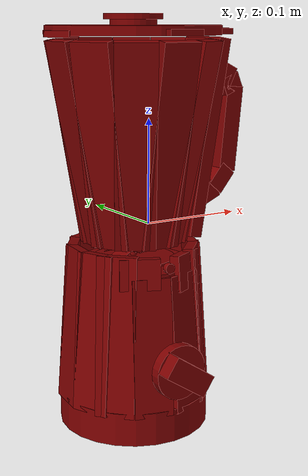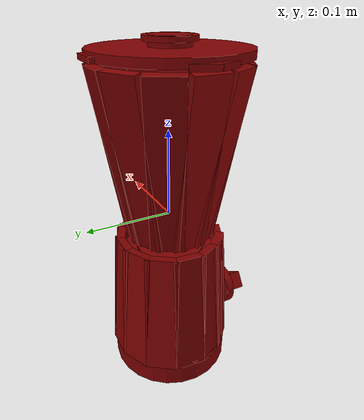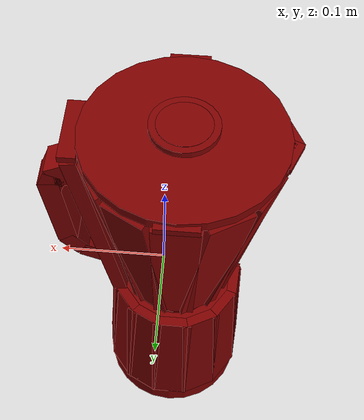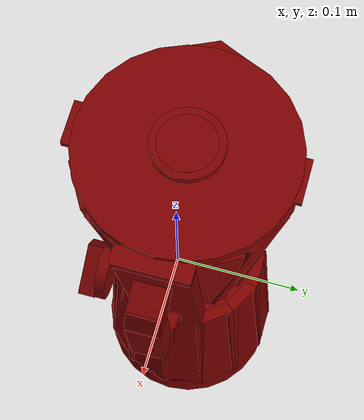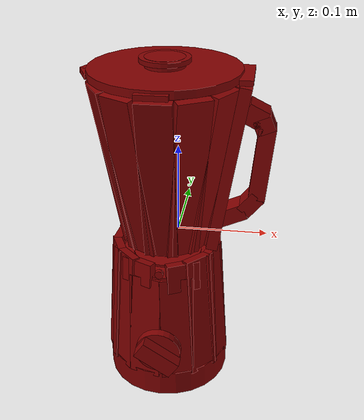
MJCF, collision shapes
<?xml version='1.0' encoding='UTF-8'?>
<mujoco model="model">
  <option timestep="0.002" gravity="0.0 0.0 -9.81"/>
  <compiler angle="radian"/>
  <asset>
    <mesh file="visuals/Blade001.obj" name="Blade001_vis"/>
    <mesh file="visuals/Body001.obj" name="Body001_vis"/>
    <mesh file="visuals/Button001.obj" name="Button001_vis"/>
    <mesh file="visuals/Handle001.obj" name="Handle001_vis"/>
    <mesh file="visuals/Jug001.obj" name="Jug001_vis"/>
    <mesh file="visuals/Jug001_Clear.obj" name="Jug001_Clear_vis"/>
    <mesh file="visuals/Knob001.obj" name="Knob001_vis"/>
    <mesh file="visuals/Lid001.obj" name="Lid001_vis"/>
    <texture file="visuals/T_BC001.png" name="Body001_material" type="2d"/>
    <material name="Body001_material" rgba="1 1 1 1.0" texture="Body001_material" shininess="0.1472135901451111" specular="1.5"/>
    <texture file="visuals/T_BC001.png" name="Button001_material" type="2d"/>
    <material name="Button001_material" rgba="1 1 1 1.0" texture="Button001_material" shininess="0.4472135901451111" specular="0.3103448502657381"/>
    <texture file="visuals/T_BC001.png" name="Jug001_Clear_material" type="2d"/>
    <material name="Jug001_Clear_material" rgba="1 1 1 0.699999988079071" texture="Jug001_Clear_material" shininess="0.5" specular="0.8502657381"/>
    <texture file="visuals/T_BC001.png" name="Blade001_material" type="2d"/>
    <material name="Blade001_material" rgba="1 1 1 1.0" texture="Blade001_material" shininess="0.4472135901451111" specular="0.3103448502657381"/>
    <texture file="visuals/T_BC001.png" name="Handle001_material" type="2d"/>
    <material name="Handle001_material" rgba="1 1 1 1.0" texture="Handle001_material" shininess="0.4472135901451111" specular="0.3103448502657381"/>
    <texture file="visuals/T_BC001.png" name="Jug001_material" type="2d"/>
    <material name="Jug001_material" rgba="1 1 1 1.0" texture="Jug001_material" shininess="0.4472135901451111" specular="0.3103448502657381"/>
    <texture file="visuals/T_BC001.png" name="Lid001_material" type="2d"/>
    <material name="Lid001_material" rgba="1 1 1 1.0" texture="Lid001_material" shininess="0.4472135901451111" specular="0.3103448502657381"/>
    <texture file="visuals/T_BC001.png" name="Knob001_material" type="2d"/>
    <material name="Knob001_material" rgba="1 1 1 1.0" texture="Knob001_material" shininess="0.4472135901451111" specular="0.3103448502657381"/>
  </asset>
  <default>
    <default class="visual">
      <geom conaffinity="0" contype="0" group="1" type="mesh"/>
    </default>
    <default class="collision">
      <geom group="0" rgba="0.5 0 0 0.5"/>
    </default>
    <default class="spawn">
      <geom group="0" rgba="1 1 1 0.5" contype="0" conaffinity="0"/>
      <site group="0" rgba="1 1 1 0.5"/>
    </default>
    <default class="region">
      <geom group="1" conaffinity="0" contype="0" rgba="0 1 0 0"/>
    </default>
  </default>
  <worldbody>
    <body>
      <body name="object">
        <geom mesh="Body001_vis" type="mesh" solimp="0.998 0.998 0.001" solref="0.001 1" friction="0.95 0.3 0.1" class="visual" material="Body001_material"/>
        <geom class="collision" type="cylinder" pos="-0.013649 0.005179 -0.177298" size="0.07223193347454071 0.01565600000321865" quat="1.0 0.0 0.0 0.0" density="1000.0"/>
        <geom class="collision" type="cylinder" pos="-0.013649 0.005179 -0.101866" size="0.059829890727996826 0.0677737444639206" quat="1.0 0.0 0.0 0.0" density="1000.0"/>
        <geom class="collision" type="box" pos="-0.075131 0.011966 -0.091631" size="0.00474097765982151 0.018581919372081757 0.07518734037876129" quat="0.9983850717544556 0.001589016756042838 0.03639443963766098 -0.043590448796749115" density="1000.0"/>
        <geom class="collision" type="box" pos="-0.041376 0.061098 -0.091631" size="0.00474097765982151 0.018581921234726906 0.07518734037876129" quat="0.8520742058753967 0.01903415098786354 0.03106090985238552 -0.52215176820755" density="1000.0"/>
        <geom class="collision" type="box" pos="-0.013410 0.067560 -0.091631" size="0.004740977194160223 0.018581919372081757 0.07518734037876129" quat="0.706637442111969 0.025759262964129448 0.025759262964129448 -0.706637442111969" density="1000.0"/>
        <geom class="collision" type="box" pos="-0.064607 0.040897 -0.091631" size="0.004740977194160223 0.018581919372081757 0.07518734037876129" quat="0.9556699991226196 0.01065084058791399 0.03483732417225838 -0.29217764735221863" density="1000.0"/>
        <geom class="collision" type="box" pos="-0.070309 -0.018440 -0.091631" size="0.004740977194160223 0.018581919372081757 0.07518734037876129" quat="0.9774983525276184 -0.007574035786092281 0.03563303127884865 0.20777370035648346" density="1000.0"/>
        <geom class="collision" type="box" pos="-0.057776 -0.037014 -0.091631" size="0.004740977194160223 0.018581919372081757 0.07518734037876129" quat="0.9232662916183472 -0.013940813951194286 0.03365609422326088 0.38242942094802856" density="1000.0"/>
        <geom class="collision" type="box" pos="0.014442 0.060621 -0.091631" size="0.00474097765982151 0.018581919372081757 0.07518734037876129" quat="0.5221518278121948 0.031060900539159775 0.019034145399928093 -0.8520742058753967" density="1000.0"/>
        <geom class="collision" type="box" pos="0.034831 0.043518 -0.091631" size="0.004740977194160223 0.018581919372081757 0.07518734037876129" quat="0.32535216212272644 0.03444439545273781 0.01186015922576189 -0.9448909163475037" density="1000.0"/>
        <geom class="collision" type="box" pos="0.046697 0.016242 -0.091631" size="0.004740977194160223 0.018581919372081757 0.07518734037876129" quat="0.08709795027971268 0.03629047051072121 0.0031750064808875322 -0.9955334663391113" density="1000.0"/>
        <geom class="collision" type="box" pos="0.044020 -0.014427 -0.091631" size="0.004740977194160223 0.018581919372081757 0.07518734037876129" quat="0.16493791341781616 -0.03592947870492935 0.006012527272105217 0.985630989074707" density="1000.0"/>
        <geom class="collision" type="box" pos="0.029921 -0.036998 -0.091631" size="0.004740977194160223 0.018581919372081757 0.07518734037876129" quat="0.3743578791618347 -0.03377646952867508 0.01364657748490572 0.9265684485435486" density="1000.0"/>
        <geom class="collision" type="box" pos="0.004369 -0.053264 -0.101837" size="0.004860866814851761 0.018987733870744705 0.0649624690413475" quat="0.5873950719833374 -0.029471756890416145 0.021412484347820282 0.8084800243377686" density="1000.0"/>
        <geom class="collision" type="box" pos="-0.030547 -0.053880 -0.101837" size="0.004740977194160223 0.018581919372081757 0.06495371460914612" quat="0.792826771736145 -0.022176628932356834 0.028901144862174988 0.6083573698997498" density="1000.0"/>
        <geom class="collision" type="box" pos="0.010758 -0.045744 -0.035915" size="0.00474097765982151 0.018581917509436607 0.016848616302013397" quat="0.5295674204826355 -0.030893627554178238 0.01930447481572628 0.8474852442741394" density="1000.0"/>
        <geom class="collision" type="box" pos="-0.038580 -0.045522 -0.032886" size="0.004740977194160223 0.018581919372081757 0.014263604767620564" quat="0.8428314924240112 -0.01957334391772747 0.03072398342192173 0.5369431972503662" density="1000.0"/>
        <body name="Button001">
          <joint axis="0.0 1.0 0.0" pos="-0.013768 -0.055843 -0.028393" limited="true" name="Button001_joint" range="0.0 0.0013" type="slide" damping="1" frictionloss="1" armature=".01" stiffness="0.05"/>
          <geom mesh="Button001_vis" type="mesh" solimp="0.998 0.998 0.001" solref="0.001 1" friction="0.95 0.3 0.1" class="visual" material="Button001_material"/>
          <geom class="collision" type="cylinder" pos="-0.013737 -0.055752 -0.028419" size="0.004705463536083698 0.0024300196673721075" quat="0.7071068286895752 -0.7071067690849304 -0.0 0.0" density="1000.0"/>
        </body>
        <body name="Jug001_Clear">
          <geom class="region" name="reg_int" type="box" pos="-0.013882 0.005887 0.071547" size="0.03769 0.038484000000000004 0.10330900000000001"/>
          <joint axis="0.0 0.0 1.0" pos="0.000000 0.004280 0.077918" limited="true" name="Jug001_Clear_joint" range="0.0 0.05" type="slide" damping="1" frictionloss="1" armature=".01" stiffness="0.05"/>
          <geom mesh="Jug001_Clear_vis" type="mesh" solimp="0.998 0.998 0.001" solref="0.001 1" friction="0.95 0.3 0.1" class="visual" material="Jug001_Clear_material"/>
          <geom class="collision" type="box" pos="-0.013410 -0.053563 0.079281" size="0.004740975797176361 0.018581919372081757 0.09355513006448746" quat="0.7044395804405212 0.0613589882850647 0.0613589882850647 -0.7044395208358765" density="1000.0"/>
          <geom class="collision" type="box" pos="-0.013410 0.063921 0.079281" size="0.004740975797176361 0.018581919372081757 0.09355513006448746" quat="0.7044395804405212 -0.0613589882850647 0.0613589882850647 0.7044395208358765" density="1000.0"/>
          <geom class="collision" type="box" pos="-0.013410 0.063921 0.079281" size="0.004740975797176361 0.018581919372081757 0.09355513006448746" quat="0.7044395804405212 -0.0613589882850647 0.0613589882850647 0.7044395208358765" density="1000.0"/>
          <geom class="collision" type="box" pos="-0.013410 -0.053563 0.079281" size="0.004740975797176361 0.018581919372081757 0.09355513006448746" quat="0.7044395804405212 0.0613589882850647 0.0613589882850647 -0.7044395208358765" density="1000.0"/>
          <geom class="collision" type="box" pos="-0.072152 0.005179 0.079281" size="0.004740975797176361 0.018581919372081757 0.09355513751506805" quat="7.475988894611874e-08 0.08677461743354797 1.3479705129881836e-09 -0.9962279796600342" density="1000.0"/>
          <geom class="collision" type="box" pos="0.045332 0.005179 0.079281" size="0.004740975797176361 0.018581919372081757 0.09355513006448746" quat="0.9962279796600342 -5.203319997093558e-09 0.08677471429109573 4.5322726127672297e-10" density="1000.0"/>
          <geom class="collision" type="box" pos="0.037462 0.034550 0.079281" size="0.004740975797176361 0.018581919372081757 0.09355513006448746" quat="0.9622822999954224 -0.02245895378291607 0.08381793648004532 0.2578427791595459" density="1000.0"/>
          <geom class="collision" type="box" pos="-0.064282 -0.024192 0.079281" size="0.004740975797176361 0.018581919372081757 0.09355513751506805" quat="0.2578427791595459 0.08381803333759308 0.02245897427201271 -0.9622822999954224" density="1000.0"/>
          <geom class="collision" type="box" pos="-0.042781 -0.045693 0.079281" size="0.004740975797176361 0.018581919372081757 0.09355513751506805" quat="0.49811404943466187 0.07514900714159012 0.043387334793806076 -0.8627586960792542" density="1000.0"/>
          <geom class="collision" type="box" pos="0.015961 0.056051 0.079281" size="0.004740975797176361 0.018581919372081757 0.09355513751506805" quat="0.8627587556838989 -0.04338733106851578 0.07514902949333191 0.4981139600276947" density="1000.0"/>
          <geom class="collision" type="box" pos="-0.042781 0.056051 0.079281" size="0.004740975797176361 0.018581919372081757 0.09355513751506805" quat="0.49811404943466187 -0.07514900714159012 0.043387334793806076 0.8627586960792542" density="1000.0"/>
          <geom class="collision" type="box" pos="0.015961 -0.045693 0.079281" size="0.004740975797176361 0.018581919372081757 0.09355513006448746" quat="0.8627587556838989 0.04338734969496727 0.07514909654855728 -0.4981139302253723" density="1000.0"/>
          <geom class="collision" type="box" pos="0.037462 -0.024192 0.079281" size="0.004740975797176361 0.018581919372081757 0.09355513006448746" quat="0.9622823596000671 0.022458944469690323 0.08381792157888412 -0.25784268975257874" density="1000.0"/>
          <geom class="collision" type="box" pos="-0.064282 0.034550 0.079281" size="0.004740975797176361 0.018581919372081757 0.09355513751506805" quat="0.2578427791595459 -0.08381803333759308 0.02245897427201271 0.9622822999954224" density="1000.0"/>
          <geom class="collision" type="box" pos="0.080603 0.004423 0.138205" size="0.011232865042984486 0.012886925600469112 0.010835387744009495" quat="0.9739777445793152 0.0 0.2266436368227005 0.0" density="1000.0"/>
          <geom class="collision" type="box" pos="0.089981 0.004423 0.129055" size="0.008133475668728352 0.012886925600469112 0.009914564900100231" quat="0.8326515555381775 0.0 0.5537972450256348 0.0" density="1000.0"/>
          <geom class="collision" type="box" pos="0.090036 0.004423 0.085208" size="0.04113192483782768 0.012886925600469112 0.00918785110116005" quat="0.6727584004402161 3.2991163134710177e-09 0.7398622632026672 -2.8109117256036598e-09" density="1000.0"/>
          <geom class="collision" type="box" pos="0.080132 0.004423 0.037720" size="0.012385156936943531 0.012886925600469112 0.00875075999647379" quat="0.4286668002605438 0.0 0.9034626483917236 0.0" density="1000.0"/>
          <geom class="collision" type="box" pos="0.060253 0.004423 0.023198" size="0.015387085266411304 0.012886925600469112 0.009129141457378864" quat="0.2087034434080124 0.0 0.9779789447784424 0.0" density="1000.0"/>
          <body name="Blade001">
            <joint axis="0.0 0.0 1.0" pos="-0.013935 0.006084 -0.025004" limited="false" name="Blade001_joint" range="0 360" type="hinge" damping="1" frictionloss="1" armature=".01" stiffness="0.05"/>
            <geom mesh="Blade001_vis" type="mesh" solimp="0.998 0.998 0.001" solref="0.001 1" friction="0.95 0.3 0.1" class="visual" material="Blade001_material"/>
            <geom class="collision" type="cylinder" pos="-0.013649 0.005179 -0.025431" size="0.003170922864228487 0.004099421203136444" quat="1.0 0.0 0.0 0.0" density="1000.0"/>
            <geom class="collision" type="box" pos="-0.014106 0.004188 -0.022508" size="0.014141938649117947 0.00791434571146965 0.0002459282986819744" quat="0.9841994047164917 0.0 0.0 0.17706358432769775" density="1000.0"/>
            <geom class="collision" type="box" pos="0.005060 0.011315 -0.019035" size="0.009196617640554905 0.0075520845130085945 0.00036561701563186944" quat="0.956265926361084 0.06398852914571762 -0.22334979474544525 0.17769597470760345" density="1000.0"/>
            <geom class="collision" type="box" pos="-0.034417 -0.003365 -0.025326" size="0.008302983827888966 0.007914342917501926 0.00034735887311398983" quat="0.9655296802520752 0.029465211555361748 -0.1717633605003357 0.19334332644939423" density="1000.0"/>
            <geom class="collision" type="box" pos="-0.014106 0.004188 -0.023715" size="0.014141938649117947 0.007914344780147076 0.0002824610273819417" quat="0.8216372132301331 0.0 -0.0 -0.570010781288147" density="1000.0"/>
            <geom class="collision" type="box" pos="-0.006670 -0.015702 -0.019874" size="0.008311481215059757 0.00791434571146965 0.0002459282986819744" quat="0.7972676753997803 -0.1377963125705719 -0.1986253559589386 -0.5531043410301208" density="1000.0"/>
            <geom class="collision" type="box" pos="-0.021755 0.024649 -0.026748" size="0.008314153179526329 0.007914344780147076 0.0002459282986819744" quat="0.8104860782623291 -0.09359202533960342 -0.13490740954875946 -0.5622747540473938" density="1000.0"/>
          </body>
          <body name="Handle001">
            <geom mesh="Handle001_vis" type="mesh" solimp="0.998 0.998 0.001" solref="0.001 1" friction="0.95 0.3 0.1" class="visual" material="Handle001_material"/>
            <geom class="collision" type="box" pos="0.055020 0.005179 0.079355" size="0.006446782033890486 0.027016857638955116 0.094341941177845" quat="0.9966984391212463 0.0 0.08119235932826996 0.0" density="1000.0"/>
          </body>
          <body name="Jug001">
            <geom mesh="Jug001_vis" type="mesh" solimp="0.998 0.998 0.001" solref="0.001 1" friction="0.95 0.3 0.1" class="visual" material="Jug001_material"/>
            <geom class="collision" type="cylinder" pos="-0.013649 0.005179 -0.031838" size="0.03966093435883522 0.0012146634981036186" quat="1.0 0.0 0.0 0.0" density="1000.0"/>
          </body>
          <body name="Lid001">
            <joint axis="0.0 0.0 1.0" pos="0.077602 0.004280 0.174706" limited="true" name="Lid001_joint" range="0.0 0.05" type="slide" damping="1" frictionloss="1" armature=".01" stiffness="0.05"/>
            <geom mesh="Lid001_vis" type="mesh" solimp="0.998 0.998 0.001" solref="0.001 1" friction="0.95 0.3 0.1" class="visual" material="Lid001_material"/>
            <geom class="collision" type="cylinder" pos="-0.013649 0.005179 0.179907" size="0.08047248423099518 0.00426448555663228" quat="1.0 0.0 0.0 0.0" density="1000.0"/>
            <geom class="collision" type="cylinder" pos="-0.013649 0.005179 0.185069" size="0.021449467167258263 0.009426616132259369" quat="1.0 0.0 0.0 0.0" density="1000.0"/>
            <geom class="collision" type="box" pos="0.070307 0.004574 0.178484" size="0.0071110534481704235 0.028332218527793884 0.0028181890957057476" quat="1.0 0.0 0.0 0.0" density="1000.0"/>
            <geom class="collision" type="cylinder" pos="-0.013649 0.005179 0.191771" size="0.026944704353809357 0.002491123741492629" quat="1.0 0.0 0.0 0.0" density="1000.0"/>
            <geom class="collision" type="box" pos="-0.013920 -0.075266 0.178484" size="0.016500504687428474 0.0049792188219726086 0.0028181886300444603" quat="1.0 0.0 0.0 0.0" density="1000.0"/>
            <geom class="collision" type="box" pos="-0.013920 0.083975 0.178484" size="0.016500504687428474 0.0049792188219726086 0.002818188862875104" quat="1.0 0.0 0.0 0.0" density="1000.0"/>
            <geom class="collision" type="box" pos="-0.091162 0.013783 0.177026" size="0.0071110534481704235 0.013324333354830742 0.0028181890957057476" quat="0.978147566318512 0.0 -0.0 -0.20791172981262207" density="1000.0"/>
            <geom class="collision" type="box" pos="-0.090956 -0.004197 0.177026" size="0.0071110534481704235 0.013324332423508167 0.0028181890957057476" quat="0.9762960076332092 0.0 0.0 0.2164396494626999" density="1000.0"/>
          </body>
        </body>
        <body name="Knob001">
          <joint axis="0.0 1.0 0.0" pos="-0.013167 -0.074790 -0.121250" limited="true" name="Knob001_joint" range="0.0 2.705260340591211" type="hinge" damping="0.05" armature="0.001"/>
          <geom mesh="Knob001_vis" type="mesh" solimp="0.998 0.998 0.001" solref="0.001 1" friction="0.95 0.3 0.1" class="visual" material="Knob001_material"/>
          <geom class="collision" type="cylinder" pos="-0.013649 -0.072546 -0.121156" size="0.025688841938972473 0.005045394878834486" quat="0.7071068286895752 -0.7071067690849304 -0.0 0.0" density="1000.0"/>
          <geom class="collision" type="box" pos="-0.013171 -0.083964 -0.121156" size="0.010556374676525593 0.007968936115503311 0.023776941001415253" quat="0.882947564125061 0.0 -0.46947166323661804 0.0" density="1000.0"/>
        </body>
        <geom class="region" name="reg_main" type="box" pos="-0.011913 0.005179000000000003 0.0" size="0.089664 0.084911 0.193298"/>
      </body>
    </body>
  </worldbody>
  <actuator>
    <motor name="Button001_joint_actuator" joint="Button001_joint" gear="0.5"/>
    <motor name="Jug001_Clear_joint_actuator" joint="Jug001_Clear_joint" gear="70"/>
    <motor name="Knob001_joint_actuator" joint="Knob001_joint" gear="10"/>
    <motor name="Blade001_joint_actuator" joint="Blade001_joint" gear="20"/>
    <motor name="Lid001_joint_actuator" joint="Lid001_joint" gear="20"/>
  </actuator>
</mujoco>
